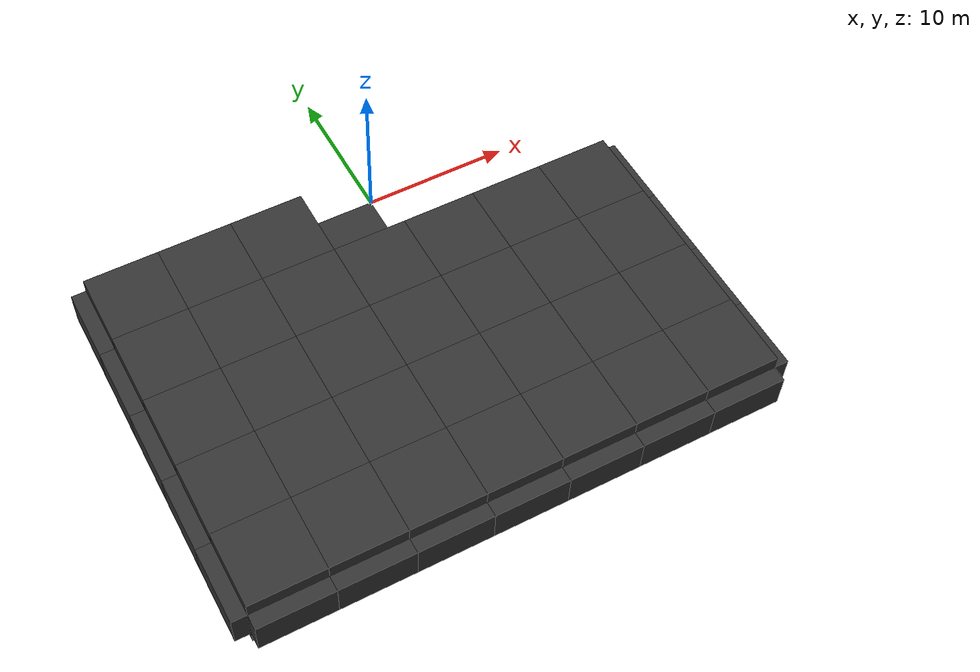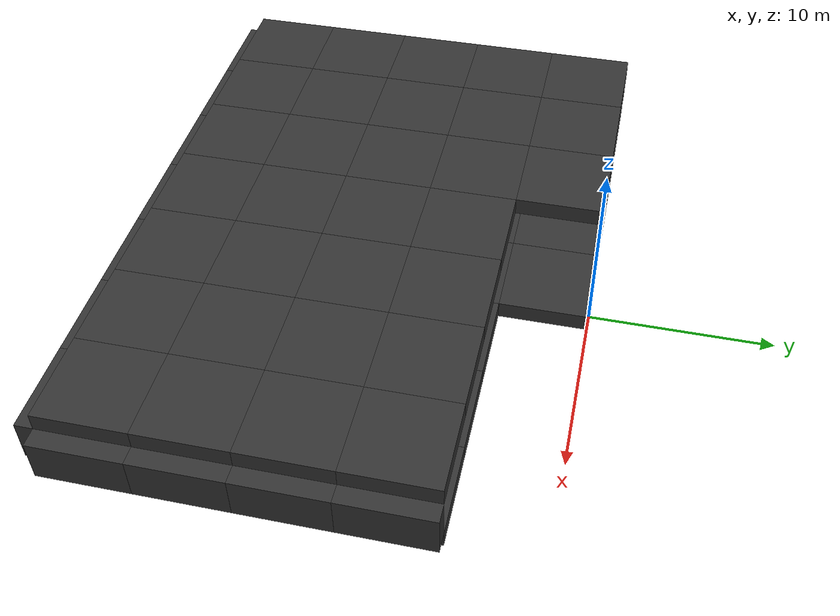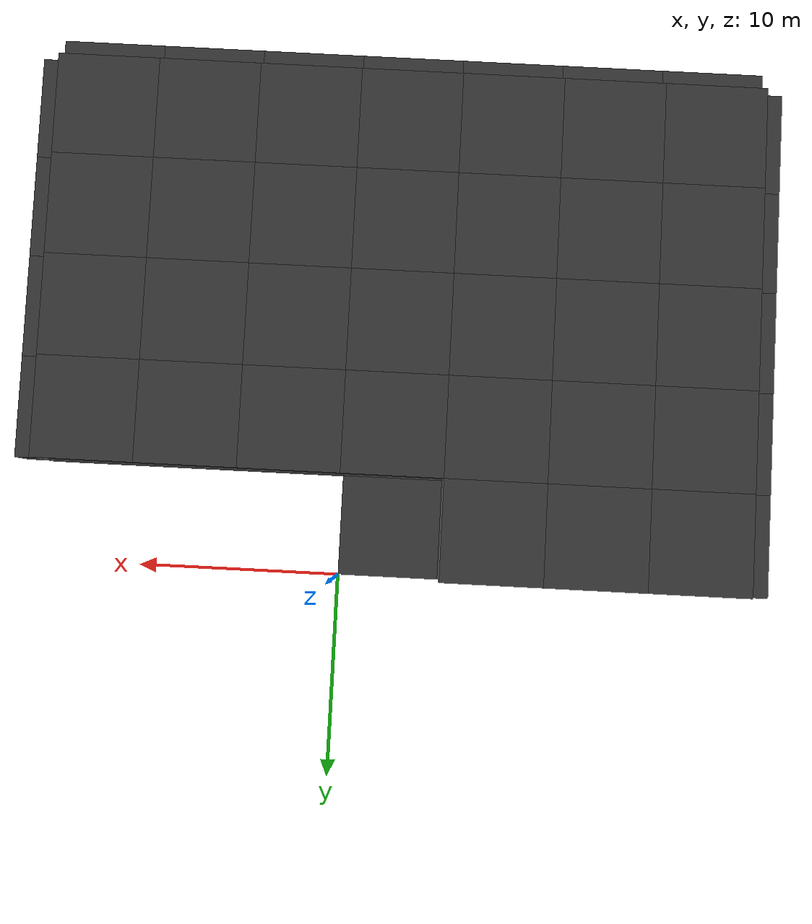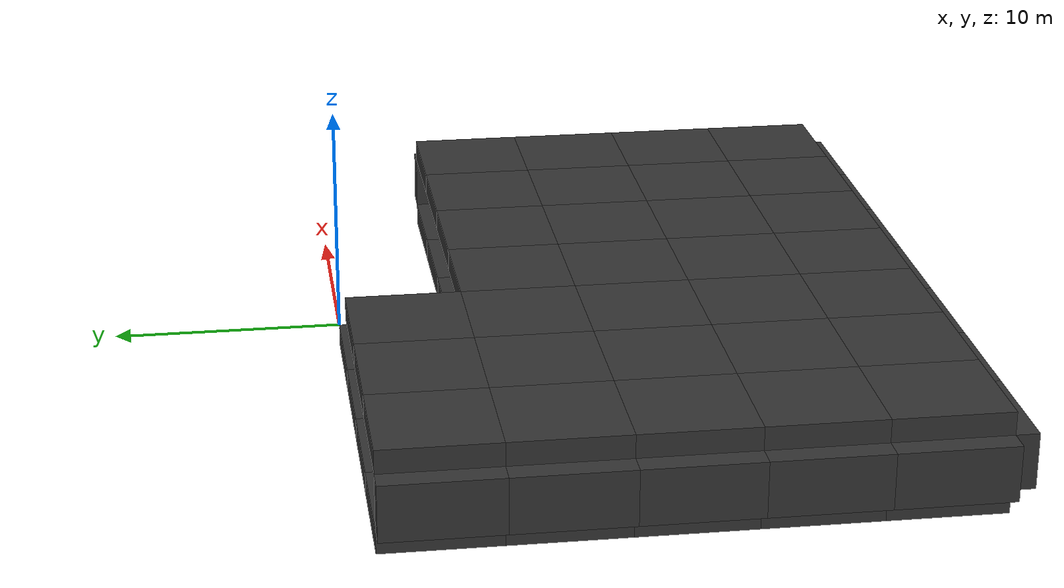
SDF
<sdf version="1.7">
 <world name="RG1">
  <model name="floor_1">
   <static>true</static>
   <pose>-17.5 -22.5 -0.5 0.0 0.0 0.0</pose>
   <link name="floor_1-base-link">
    <visual name="floor_1-visual">
     <geometry><box><size>5 5 1.0</size></box></geometry>
     <material><diffuse>0.2 0.2 0.2 1</diffuse><specular>0.1 0.1 0.1 1</specular></material>
    </visual>
    <collision name="floor_1-collision"><geometry><box><size>5 5 1.0</size></box></geometry></collision>
   </link>
  </model>
  <model name="ceiling_1">
   <static>true</static>
   <pose>-17.5 -22.5 2.9 0.0 0.0 0.0</pose>
   <link name="ceiling_1-base-link">
    <visual name="ceiling_1-visual">
     <geometry><box><size>5 5 1.0</size></box></geometry>
     <material><diffuse>0.2 0.2 0.2 1</diffuse><specular>0.1 0.1 0.1 1</specular></material>
    </visual>
    <collision name="ceiling_1-collision"><geometry><box><size>5 5 1.0</size></box></geometry></collision>
    <light type="point" name="ceiling_1-light">
     <pose>0 0 -1 0 0 0</pose>
     <cast_shadows>false</cast_shadows>
     <diffuse>0.8 0.8 0.8 1</diffuse>
     <attenuation>
      <range>10</range>
      <constant>0.8</constant>
      <linear>0.05</linear>
      <quadratic>0.01</quadratic>
     </attenuation>
    </light>
   </link>
  </model>
  <model name="wall_1">
   <static>true</static>
   <pose>-20.5 -22.5 1.2 0.0 0.0 1.570796326795</pose>
   <link name="wall_1-base-link">
    <visual name="wall_1-visual">
     <geometry><box><size>5 1 2.4</size></box></geometry>
     <material><diffuse>0.2 0.2 0.2 1</diffuse><specular>0.1 0.1 0.1 1</specular></material>
    </visual>
    <collision name="wall_1-collision"><geometry><box><size>5 1 2.4</size></box></geometry></collision>
   </link>
  </model>
  <model name="wall_2">
   <static>true</static>
   <pose>-17.5 -25.5 1.2 0.0 0.0 0.0</pose>
   <link name="wall_2-base-link">
    <visual name="wall_2-visual">
     <geometry><box><size>5 1 2.4</size></box></geometry>
     <material><diffuse>0.2 0.2 0.2 1</diffuse><specular>0.1 0.1 0.1 1</specular></material>
    </visual>
    <collision name="wall_2-collision"><geometry><box><size>5 1 2.4</size></box></geometry></collision>
   </link>
  </model>
  <model name="floor_2">
   <static>true</static>
   <pose>-17.5 -17.5 -0.5 0.0 0.0 0.0</pose>
   <link name="floor_2-base-link">
    <visual name="floor_2-visual">
     <geometry><box><size>5 5 1.0</size></box></geometry>
     <material><diffuse>0.2 0.2 0.2 1</diffuse><specular>0.1 0.1 0.1 1</specular></material>
    </visual>
    <collision name="floor_2-collision"><geometry><box><size>5 5 1.0</size></box></geometry></collision>
   </link>
  </model>
  <model name="ceiling_2">
   <static>true</static>
   <pose>-17.5 -17.5 2.9 0.0 0.0 0.0</pose>
   <link name="ceiling_2-base-link">
    <visual name="ceiling_2-visual">
     <geometry><box><size>5 5 1.0</size></box></geometry>
     <material><diffuse>0.2 0.2 0.2 1</diffuse><specular>0.1 0.1 0.1 1</specular></material>
    </visual>
    <collision name="ceiling_2-collision"><geometry><box><size>5 5 1.0</size></box></geometry></collision>
    <light type="point" name="ceiling_2-light">
     <pose>0 0 -1 0 0 0</pose>
     <cast_shadows>false</cast_shadows>
     <diffuse>0.8 0.8 0.8 1</diffuse>
     <attenuation>
      <range>10</range>
      <constant>0.8</constant>
      <linear>0.05</linear>
      <quadratic>0.01</quadratic>
     </attenuation>
    </light>
   </link>
  </model>
  <model name="wall_3">
   <static>true</static>
   <pose>-20.5 -17.5 1.2 0.0 0.0 1.570796326795</pose>
   <link name="wall_3-base-link">
    <visual name="wall_3-visual">
     <geometry><box><size>5 1 2.4</size></box></geometry>
     <material><diffuse>0.2 0.2 0.2 1</diffuse><specular>0.1 0.1 0.1 1</specular></material>
    </visual>
    <collision name="wall_3-collision"><geometry><box><size>5 1 2.4</size></box></geometry></collision>
   </link>
  </model>
  <model name="floor_3">
   <static>true</static>
   <pose>-17.5 -12.5 -0.5 0.0 0.0 0.0</pose>
   <link name="floor_3-base-link">
    <visual name="floor_3-visual">
     <geometry><box><size>5 5 1.0</size></box></geometry>
     <material><diffuse>0.2 0.2 0.2 1</diffuse><specular>0.1 0.1 0.1 1</specular></material>
    </visual>
    <collision name="floor_3-collision"><geometry><box><size>5 5 1.0</size></box></geometry></collision>
   </link>
  </model>
  <model name="ceiling_3">
   <static>true</static>
   <pose>-17.5 -12.5 2.9 0.0 0.0 0.0</pose>
   <link name="ceiling_3-base-link">
    <visual name="ceiling_3-visual">
     <geometry><box><size>5 5 1.0</size></box></geometry>
     <material><diffuse>0.2 0.2 0.2 1</diffuse><specular>0.1 0.1 0.1 1</specular></material>
    </visual>
    <collision name="ceiling_3-collision"><geometry><box><size>5 5 1.0</size></box></geometry></collision>
    <light type="point" name="ceiling_3-light">
     <pose>0 0 -1 0 0 0</pose>
     <cast_shadows>false</cast_shadows>
     <diffuse>0.8 0.8 0.8 1</diffuse>
     <attenuation>
      <range>10</range>
      <constant>0.8</constant>
      <linear>0.05</linear>
      <quadratic>0.01</quadratic>
     </attenuation>
    </light>
   </link>
  </model>
  <model name="wall_4">
   <static>true</static>
   <pose>-20.5 -12.5 1.2 0.0 0.0 1.570796326795</pose>
   <link name="wall_4-base-link">
    <visual name="wall_4-visual">
     <geometry><box><size>5 1 2.4</size></box></geometry>
     <material><diffuse>0.2 0.2 0.2 1</diffuse><specular>0.1 0.1 0.1 1</specular></material>
    </visual>
    <collision name="wall_4-collision"><geometry><box><size>5 1 2.4</size></box></geometry></collision>
   </link>
  </model>
  <model name="floor_4">
   <static>true</static>
   <pose>-17.5 -7.5 -0.5 0.0 0.0 0.0</pose>
   <link name="floor_4-base-link">
    <visual name="floor_4-visual">
     <geometry><box><size>5 5 1.0</size></box></geometry>
     <material><diffuse>0.2 0.2 0.2 1</diffuse><specular>0.1 0.1 0.1 1</specular></material>
    </visual>
    <collision name="floor_4-collision"><geometry><box><size>5 5 1.0</size></box></geometry></collision>
   </link>
  </model>
  <model name="ceiling_4">
   <static>true</static>
   <pose>-17.5 -7.5 2.9 0.0 0.0 0.0</pose>
   <link name="ceiling_4-base-link">
    <visual name="ceiling_4-visual">
     <geometry><box><size>5 5 1.0</size></box></geometry>
     <material><diffuse>0.2 0.2 0.2 1</diffuse><specular>0.1 0.1 0.1 1</specular></material>
    </visual>
    <collision name="ceiling_4-collision"><geometry><box><size>5 5 1.0</size></box></geometry></collision>
    <light type="point" name="ceiling_4-light">
     <pose>0 0 -1 0 0 0</pose>
     <cast_shadows>false</cast_shadows>
     <diffuse>0.8 0.8 0.8 1</diffuse>
     <attenuation>
      <range>10</range>
      <constant>0.8</constant>
      <linear>0.05</linear>
      <quadratic>0.01</quadratic>
     </attenuation>
    </light>
   </link>
  </model>
  <model name="wall_5">
   <static>true</static>
   <pose>-20.5 -7.5 1.2 0.0 0.0 1.570796326795</pose>
   <link name="wall_5-base-link">
    <visual name="wall_5-visual">
     <geometry><box><size>5 1 2.4</size></box></geometry>
     <material><diffuse>0.2 0.2 0.2 1</diffuse><specular>0.1 0.1 0.1 1</specular></material>
    </visual>
    <collision name="wall_5-collision"><geometry><box><size>5 1 2.4</size></box></geometry></collision>
   </link>
  </model>
  <model name="floor_5">
   <static>true</static>
   <pose>-17.5 -2.5 -0.5 0.0 0.0 0.0</pose>
   <link name="floor_5-base-link">
    <visual name="floor_5-visual">
     <geometry><box><size>5 5 1.0</size></box></geometry>
     <material><diffuse>0.2 0.2 0.2 1</diffuse><specular>0.1 0.1 0.1 1</specular></material>
    </visual>
    <collision name="floor_5-collision"><geometry><box><size>5 5 1.0</size></box></geometry></collision>
   </link>
  </model>
  <model name="ceiling_5">
   <static>true</static>
   <pose>-17.5 -2.5 2.9 0.0 0.0 0.0</pose>
   <link name="ceiling_5-base-link">
    <visual name="ceiling_5-visual">
     <geometry><box><size>5 5 1.0</size></box></geometry>
     <material><diffuse>0.2 0.2 0.2 1</diffuse><specular>0.1 0.1 0.1 1</specular></material>
    </visual>
    <collision name="ceiling_5-collision"><geometry><box><size>5 5 1.0</size></box></geometry></collision>
    <light type="point" name="ceiling_5-light">
     <pose>0 0 -1 0 0 0</pose>
     <cast_shadows>false</cast_shadows>
     <diffuse>0.8 0.8 0.8 1</diffuse>
     <attenuation>
      <range>10</range>
      <constant>0.8</constant>
      <linear>0.05</linear>
      <quadratic>0.01</quadratic>
     </attenuation>
    </light>
   </link>
  </model>
  <model name="wall_6">
   <static>true</static>
   <pose>-20.5 -2.5 1.2 0.0 0.0 1.570796326795</pose>
   <link name="wall_6-base-link">
    <visual name="wall_6-visual">
     <geometry><box><size>5 1 2.4</size></box></geometry>
     <material><diffuse>0.2 0.2 0.2 1</diffuse><specular>0.1 0.1 0.1 1</specular></material>
    </visual>
    <collision name="wall_6-collision"><geometry><box><size>5 1 2.4</size></box></geometry></collision>
   </link>
  </model>
  <model name="floor_10">
   <static>true</static>
   <pose>-12.5 -22.5 -0.5 0.0 0.0 0.0</pose>
   <link name="floor_10-base-link">
    <visual name="floor_10-visual">
     <geometry><box><size>5 5 1.0</size></box></geometry>
     <material><diffuse>0.2 0.2 0.2 1</diffuse><specular>0.1 0.1 0.1 1</specular></material>
    </visual>
    <collision name="floor_10-collision"><geometry><box><size>5 5 1.0</size></box></geometry></collision>
   </link>
  </model>
  <model name="ceiling_10">
   <static>true</static>
   <pose>-12.5 -22.5 2.9 0.0 0.0 0.0</pose>
   <link name="ceiling_10-base-link">
    <visual name="ceiling_10-visual">
     <geometry><box><size>5 5 1.0</size></box></geometry>
     <material><diffuse>0.2 0.2 0.2 1</diffuse><specular>0.1 0.1 0.1 1</specular></material>
    </visual>
    <collision name="ceiling_10-collision"><geometry><box><size>5 5 1.0</size></box></geometry></collision>
    <light type="point" name="ceiling_10-light">
     <pose>0 0 -1 0 0 0</pose>
     <cast_shadows>false</cast_shadows>
     <diffuse>0.8 0.8 0.8 1</diffuse>
     <attenuation>
      <range>10</range>
      <constant>0.8</constant>
      <linear>0.05</linear>
      <quadratic>0.01</quadratic>
     </attenuation>
    </light>
   </link>
  </model>
  <model name="wall_12">
   <static>true</static>
   <pose>-12.5 -25.5 1.2 0.0 0.0 0.0</pose>
   <link name="wall_12-base-link">
    <visual name="wall_12-visual">
     <geometry><box><size>5 1 2.4</size></box></geometry>
     <material><diffuse>0.2 0.2 0.2 1</diffuse><specular>0.1 0.1 0.1 1</specular></material>
    </visual>
    <collision name="wall_12-collision"><geometry><box><size>5 1 2.4</size></box></geometry></collision>
   </link>
  </model>
  <model name="floor_11">
   <static>true</static>
   <pose>-12.5 -17.5 -0.5 0.0 0.0 0.0</pose>
   <link name="floor_11-base-link">
    <visual name="floor_11-visual">
     <geometry><box><size>5 5 1.0</size></box></geometry>
     <material><diffuse>0.2 0.2 0.2 1</diffuse><specular>0.1 0.1 0.1 1</specular></material>
    </visual>
    <collision name="floor_11-collision"><geometry><box><size>5 5 1.0</size></box></geometry></collision>
   </link>
  </model>
  <model name="ceiling_11">
   <static>true</static>
   <pose>-12.5 -17.5 2.9 0.0 0.0 0.0</pose>
   <link name="ceiling_11-base-link">
    <visual name="ceiling_11-visual">
     <geometry><box><size>5 5 1.0</size></box></geometry>
     <material><diffuse>0.2 0.2 0.2 1</diffuse><specular>0.1 0.1 0.1 1</specular></material>
    </visual>
    <collision name="ceiling_11-collision"><geometry><box><size>5 5 1.0</size></box></geometry></collision>
    <light type="point" name="ceiling_11-light">
     <pose>0 0 -1 0 0 0</pose>
     <cast_shadows>false</cast_shadows>
     <diffuse>0.8 0.8 0.8 1</diffuse>
     <attenuation>
      <range>10</range>
      <constant>0.8</constant>
      <linear>0.05</linear>
      <quadratic>0.01</quadratic>
     </attenuation>
    </light>
   </link>
  </model>
  <model name="floor_12">
   <static>true</static>
   <pose>-12.5 -12.5 -0.5 0.0 0.0 0.0</pose>
   <link name="floor_12-base-link">
    <visual name="floor_12-visual">
     <geometry><box><size>5 5 1.0</size></box></geometry>
     <material><diffuse>0.2 0.2 0.2 1</diffuse><specular>0.1 0.1 0.1 1</specular></material>
    </visual>
    <collision name="floor_12-collision"><geometry><box><size>5 5 1.0</size></box></geometry></collision>
   </link>
  </model>
  <model name="ceiling_12">
   <static>true</static>
   <pose>-12.5 -12.5 2.9 0.0 0.0 0.0</pose>
   <link name="ceiling_12-base-link">
    <visual name="ceiling_12-visual">
     <geometry><box><size>5 5 1.0</size></box></geometry>
     <material><diffuse>0.2 0.2 0.2 1</diffuse><specular>0.1 0.1 0.1 1</specular></material>
    </visual>
    <collision name="ceiling_12-collision"><geometry><box><size>5 5 1.0</size></box></geometry></collision>
    <light type="point" name="ceiling_12-light">
     <pose>0 0 -1 0 0 0</pose>
     <cast_shadows>false</cast_shadows>
     <diffuse>0.8 0.8 0.8 1</diffuse>
     <attenuation>
      <range>10</range>
      <constant>0.8</constant>
      <linear>0.05</linear>
      <quadratic>0.01</quadratic>
     </attenuation>
    </light>
   </link>
  </model>
  <model name="floor_13">
   <static>true</static>
   <pose>-12.5 -7.5 -0.5 0.0 0.0 0.0</pose>
   <link name="floor_13-base-link">
    <visual name="floor_13-visual">
     <geometry><box><size>5 5 1.0</size></box></geometry>
     <material><diffuse>0.2 0.2 0.2 1</diffuse><specular>0.1 0.1 0.1 1</specular></material>
    </visual>
    <collision name="floor_13-collision"><geometry><box><size>5 5 1.0</size></box></geometry></collision>
   </link>
  </model>
  <model name="ceiling_13">
   <static>true</static>
   <pose>-12.5 -7.5 2.9 0.0 0.0 0.0</pose>
   <link name="ceiling_13-base-link">
    <visual name="ceiling_13-visual">
     <geometry><box><size>5 5 1.0</size></box></geometry>
     <material><diffuse>0.2 0.2 0.2 1</diffuse><specular>0.1 0.1 0.1 1</specular></material>
    </visual>
    <collision name="ceiling_13-collision"><geometry><box><size>5 5 1.0</size></box></geometry></collision>
    <light type="point" name="ceiling_13-light">
     <pose>0 0 -1 0 0 0</pose>
     <cast_shadows>false</cast_shadows>
     <diffuse>0.8 0.8 0.8 1</diffuse>
     <attenuation>
      <range>10</range>
      <constant>0.8</constant>
      <linear>0.05</linear>
      <quadratic>0.01</quadratic>
     </attenuation>
    </light>
   </link>
  </model>
  <model name="floor_14">
   <static>true</static>
   <pose>-12.5 -2.5 -0.5 0.0 0.0 0.0</pose>
   <link name="floor_14-base-link">
    <visual name="floor_14-visual">
     <geometry><box><size>5 5 1.0</size></box></geometry>
     <material><diffuse>0.2 0.2 0.2 1</diffuse><specular>0.1 0.1 0.1 1</specular></material>
    </visual>
    <collision name="floor_14-collision"><geometry><box><size>5 5 1.0</size></box></geometry></collision>
   </link>
  </model>
  <model name="ceiling_14">
   <static>true</static>
   <pose>-12.5 -2.5 2.9 0.0 0.0 0.0</pose>
   <link name="ceiling_14-base-link">
    <visual name="ceiling_14-visual">
     <geometry><box><size>5 5 1.0</size></box></geometry>
     <material><diffuse>0.2 0.2 0.2 1</diffuse><specular>0.1 0.1 0.1 1</specular></material>
    </visual>
    <collision name="ceiling_14-collision"><geometry><box><size>5 5 1.0</size></box></geometry></collision>
    <light type="point" name="ceiling_14-light">
     <pose>0 0 -1 0 0 0</pose>
     <cast_shadows>false</cast_shadows>
     <diffuse>0.8 0.8 0.8 1</diffuse>
     <attenuation>
      <range>10</range>
      <constant>0.8</constant>
      <linear>0.05</linear>
      <quadratic>0.01</quadratic>
     </attenuation>
    </light>
   </link>
  </model>
  <model name="floor_19">
   <static>true</static>
   <pose>-7.5 -22.5 -0.5 0.0 0.0 0.0</pose>
   <link name="floor_19-base-link">
    <visual name="floor_19-visual">
     <geometry><box><size>5 5 1.0</size></box></geometry>
     <material><diffuse>0.2 0.2 0.2 1</diffuse><specular>0.1 0.1 0.1 1</specular></material>
    </visual>
    <collision name="floor_19-collision"><geometry><box><size>5 5 1.0</size></box></geometry></collision>
   </link>
  </model>
  <model name="ceiling_19">
   <static>true</static>
   <pose>-7.5 -22.5 2.9 0.0 0.0 0.0</pose>
   <link name="ceiling_19-base-link">
    <visual name="ceiling_19-visual">
     <geometry><box><size>5 5 1.0</size></box></geometry>
     <material><diffuse>0.2 0.2 0.2 1</diffuse><specular>0.1 0.1 0.1 1</specular></material>
    </visual>
    <collision name="ceiling_19-collision"><geometry><box><size>5 5 1.0</size></box></geometry></collision>
    <light type="point" name="ceiling_19-light">
     <pose>0 0 -1 0 0 0</pose>
     <cast_shadows>false</cast_shadows>
     <diffuse>0.8 0.8 0.8 1</diffuse>
     <attenuation>
      <range>10</range>
      <constant>0.8</constant>
      <linear>0.05</linear>
      <quadratic>0.01</quadratic>
     </attenuation>
    </light>
   </link>
  </model>
  <model name="wall_14">
   <static>true</static>
   <pose>-7.5 -25.5 1.2 0.0 0.0 0.0</pose>
   <link name="wall_14-base-link">
    <visual name="wall_14-visual">
     <geometry><box><size>5 1 2.4</size></box></geometry>
     <material><diffuse>0.2 0.2 0.2 1</diffuse><specular>0.1 0.1 0.1 1</specular></material>
    </visual>
    <collision name="wall_14-collision"><geometry><box><size>5 1 2.4</size></box></geometry></collision>
   </link>
  </model>
  <model name="floor_20">
   <static>true</static>
   <pose>-7.5 -17.5 -0.5 0.0 0.0 0.0</pose>
   <link name="floor_20-base-link">
    <visual name="floor_20-visual">
     <geometry><box><size>5 5 1.0</size></box></geometry>
     <material><diffuse>0.2 0.2 0.2 1</diffuse><specular>0.1 0.1 0.1 1</specular></material>
    </visual>
    <collision name="floor_20-collision"><geometry><box><size>5 5 1.0</size></box></geometry></collision>
   </link>
  </model>
  <model name="ceiling_20">
   <static>true</static>
   <pose>-7.5 -17.5 2.9 0.0 0.0 0.0</pose>
   <link name="ceiling_20-base-link">
    <visual name="ceiling_20-visual">
     <geometry><box><size>5 5 1.0</size></box></geometry>
     <material><diffuse>0.2 0.2 0.2 1</diffuse><specular>0.1 0.1 0.1 1</specular></material>
    </visual>
    <collision name="ceiling_20-collision"><geometry><box><size>5 5 1.0</size></box></geometry></collision>
    <light type="point" name="ceiling_20-light">
     <pose>0 0 -1 0 0 0</pose>
     <cast_shadows>false</cast_shadows>
     <diffuse>0.8 0.8 0.8 1</diffuse>
     <attenuation>
      <range>10</range>
      <constant>0.8</constant>
      <linear>0.05</linear>
      <quadratic>0.01</quadratic>
     </attenuation>
    </light>
   </link>
  </model>
  <model name="floor_21">
   <static>true</static>
   <pose>-7.5 -12.5 -0.5 0.0 0.0 0.0</pose>
   <link name="floor_21-base-link">
    <visual name="floor_21-visual">
     <geometry><box><size>5 5 1.0</size></box></geometry>
     <material><diffuse>0.2 0.2 0.2 1</diffuse><specular>0.1 0.1 0.1 1</specular></material>
    </visual>
    <collision name="floor_21-collision"><geometry><box><size>5 5 1.0</size></box></geometry></collision>
   </link>
  </model>
  <model name="ceiling_21">
   <static>true</static>
   <pose>-7.5 -12.5 2.9 0.0 0.0 0.0</pose>
   <link name="ceiling_21-base-link">
    <visual name="ceiling_21-visual">
     <geometry><box><size>5 5 1.0</size></box></geometry>
     <material><diffuse>0.2 0.2 0.2 1</diffuse><specular>0.1 0.1 0.1 1</specular></material>
    </visual>
    <collision name="ceiling_21-collision"><geometry><box><size>5 5 1.0</size></box></geometry></collision>
    <light type="point" name="ceiling_21-light">
     <pose>0 0 -1 0 0 0</pose>
     <cast_shadows>false</cast_shadows>
     <diffuse>0.8 0.8 0.8 1</diffuse>
     <attenuation>
      <range>10</range>
      <constant>0.8</constant>
      <linear>0.05</linear>
      <quadratic>0.01</quadratic>
     </attenuation>
    </light>
   </link>
  </model>
  <model name="floor_22">
   <static>true</static>
   <pose>-7.5 -7.5 -0.5 0.0 0.0 0.0</pose>
   <link name="floor_22-base-link">
    <visual name="floor_22-visual">
     <geometry><box><size>5 5 1.0</size></box></geometry>
     <material><diffuse>0.2 0.2 0.2 1</diffuse><specular>0.1 0.1 0.1 1</specular></material>
    </visual>
    <collision name="floor_22-collision"><geometry><box><size>5 5 1.0</size></box></geometry></collision>
   </link>
  </model>
  <model name="ceiling_22">
   <static>true</static>
   <pose>-7.5 -7.5 2.9 0.0 0.0 0.0</pose>
   <link name="ceiling_22-base-link">
    <visual name="ceiling_22-visual">
     <geometry><box><size>5 5 1.0</size></box></geometry>
     <material><diffuse>0.2 0.2 0.2 1</diffuse><specular>0.1 0.1 0.1 1</specular></material>
    </visual>
    <collision name="ceiling_22-collision"><geometry><box><size>5 5 1.0</size></box></geometry></collision>
    <light type="point" name="ceiling_22-light">
     <pose>0 0 -1 0 0 0</pose>
     <cast_shadows>false</cast_shadows>
     <diffuse>0.8 0.8 0.8 1</diffuse>
     <attenuation>
      <range>10</range>
      <constant>0.8</constant>
      <linear>0.05</linear>
      <quadratic>0.01</quadratic>
     </attenuation>
    </light>
   </link>
  </model>
  <model name="floor_23">
   <static>true</static>
   <pose>-7.5 -2.5 -0.5 0.0 0.0 0.0</pose>
   <link name="floor_23-base-link">
    <visual name="floor_23-visual">
     <geometry><box><size>5 5 1.0</size></box></geometry>
     <material><diffuse>0.2 0.2 0.2 1</diffuse><specular>0.1 0.1 0.1 1</specular></material>
    </visual>
    <collision name="floor_23-collision"><geometry><box><size>5 5 1.0</size></box></geometry></collision>
   </link>
  </model>
  <model name="ceiling_23">
   <static>true</static>
   <pose>-7.5 -2.5 2.9 0.0 0.0 0.0</pose>
   <link name="ceiling_23-base-link">
    <visual name="ceiling_23-visual">
     <geometry><box><size>5 5 1.0</size></box></geometry>
     <material><diffuse>0.2 0.2 0.2 1</diffuse><specular>0.1 0.1 0.1 1</specular></material>
    </visual>
    <collision name="ceiling_23-collision"><geometry><box><size>5 5 1.0</size></box></geometry></collision>
    <light type="point" name="ceiling_23-light">
     <pose>0 0 -1 0 0 0</pose>
     <cast_shadows>false</cast_shadows>
     <diffuse>0.8 0.8 0.8 1</diffuse>
     <attenuation>
      <range>10</range>
      <constant>0.8</constant>
      <linear>0.05</linear>
      <quadratic>0.01</quadratic>
     </attenuation>
    </light>
   </link>
  </model>
  <model name="floor_28">
   <static>true</static>
   <pose>-2.5 -22.5 -0.5 0.0 0.0 0.0</pose>
   <link name="floor_28-base-link">
    <visual name="floor_28-visual">
     <geometry><box><size>5 5 1.0</size></box></geometry>
     <material><diffuse>0.2 0.2 0.2 1</diffuse><specular>0.1 0.1 0.1 1</specular></material>
    </visual>
    <collision name="floor_28-collision"><geometry><box><size>5 5 1.0</size></box></geometry></collision>
   </link>
  </model>
  <model name="ceiling_28">
   <static>true</static>
   <pose>-2.5 -22.5 2.9 0.0 0.0 0.0</pose>
   <link name="ceiling_28-base-link">
    <visual name="ceiling_28-visual">
     <geometry><box><size>5 5 1.0</size></box></geometry>
     <material><diffuse>0.2 0.2 0.2 1</diffuse><specular>0.1 0.1 0.1 1</specular></material>
    </visual>
    <collision name="ceiling_28-collision"><geometry><box><size>5 5 1.0</size></box></geometry></collision>
    <light type="point" name="ceiling_28-light">
     <pose>0 0 -1 0 0 0</pose>
     <cast_shadows>false</cast_shadows>
     <diffuse>0.8 0.8 0.8 1</diffuse>
     <attenuation>
      <range>10</range>
      <constant>0.8</constant>
      <linear>0.05</linear>
      <quadratic>0.01</quadratic>
     </attenuation>
    </light>
   </link>
  </model>
  <model name="wall_16">
   <static>true</static>
   <pose>-2.5 -25.5 1.2 0.0 0.0 0.0</pose>
   <link name="wall_16-base-link">
    <visual name="wall_16-visual">
     <geometry><box><size>5 1 2.4</size></box></geometry>
     <material><diffuse>0.2 0.2 0.2 1</diffuse><specular>0.1 0.1 0.1 1</specular></material>
    </visual>
    <collision name="wall_16-collision"><geometry><box><size>5 1 2.4</size></box></geometry></collision>
   </link>
  </model>
  <model name="floor_29">
   <static>true</static>
   <pose>-2.5 -17.5 -0.5 0.0 0.0 0.0</pose>
   <link name="floor_29-base-link">
    <visual name="floor_29-visual">
     <geometry><box><size>5 5 1.0</size></box></geometry>
     <material><diffuse>0.2 0.2 0.2 1</diffuse><specular>0.1 0.1 0.1 1</specular></material>
    </visual>
    <collision name="floor_29-collision"><geometry><box><size>5 5 1.0</size></box></geometry></collision>
   </link>
  </model>
  <model name="ceiling_29">
   <static>true</static>
   <pose>-2.5 -17.5 2.9 0.0 0.0 0.0</pose>
   <link name="ceiling_29-base-link">
    <visual name="ceiling_29-visual">
     <geometry><box><size>5 5 1.0</size></box></geometry>
     <material><diffuse>0.2 0.2 0.2 1</diffuse><specular>0.1 0.1 0.1 1</specular></material>
    </visual>
    <collision name="ceiling_29-collision"><geometry><box><size>5 5 1.0</size></box></geometry></collision>
    <light type="point" name="ceiling_29-light">
     <pose>0 0 -1 0 0 0</pose>
     <cast_shadows>false</cast_shadows>
     <diffuse>0.8 0.8 0.8 1</diffuse>
     <attenuation>
      <range>10</range>
      <constant>0.8</constant>
      <linear>0.05</linear>
      <quadratic>0.01</quadratic>
     </attenuation>
    </light>
   </link>
  </model>
  <model name="floor_30">
   <static>true</static>
   <pose>-2.5 -12.5 -0.5 0.0 0.0 0.0</pose>
   <link name="floor_30-base-link">
    <visual name="floor_30-visual">
     <geometry><box><size>5 5 1.0</size></box></geometry>
     <material><diffuse>0.2 0.2 0.2 1</diffuse><specular>0.1 0.1 0.1 1</specular></material>
    </visual>
    <collision name="floor_30-collision"><geometry><box><size>5 5 1.0</size></box></geometry></collision>
   </link>
  </model>
  <model name="ceiling_30">
   <static>true</static>
   <pose>-2.5 -12.5 2.9 0.0 0.0 0.0</pose>
   <link name="ceiling_30-base-link">
    <visual name="ceiling_30-visual">
     <geometry><box><size>5 5 1.0</size></box></geometry>
     <material><diffuse>0.2 0.2 0.2 1</diffuse><specular>0.1 0.1 0.1 1</specular></material>
    </visual>
    <collision name="ceiling_30-collision"><geometry><box><size>5 5 1.0</size></box></geometry></collision>
    <light type="point" name="ceiling_30-light">
     <pose>0 0 -1 0 0 0</pose>
     <cast_shadows>false</cast_shadows>
     <diffuse>0.8 0.8 0.8 1</diffuse>
     <attenuation>
      <range>10</range>
      <constant>0.8</constant>
      <linear>0.05</linear>
      <quadratic>0.01</quadratic>
     </attenuation>
    </light>
   </link>
  </model>
  <model name="floor_31">
   <static>true</static>
   <pose>-2.5 -7.5 -0.5 0.0 0.0 0.0</pose>
   <link name="floor_31-base-link">
    <visual name="floor_31-visual">
     <geometry><box><size>5 5 1.0</size></box></geometry>
     <material><diffuse>0.2 0.2 0.2 1</diffuse><specular>0.1 0.1 0.1 1</specular></material>
    </visual>
    <collision name="floor_31-collision"><geometry><box><size>5 5 1.0</size></box></geometry></collision>
   </link>
  </model>
  <model name="ceiling_31">
   <static>true</static>
   <pose>-2.5 -7.5 2.9 0.0 0.0 0.0</pose>
   <link name="ceiling_31-base-link">
    <visual name="ceiling_31-visual">
     <geometry><box><size>5 5 1.0</size></box></geometry>
     <material><diffuse>0.2 0.2 0.2 1</diffuse><specular>0.1 0.1 0.1 1</specular></material>
    </visual>
    <collision name="ceiling_31-collision"><geometry><box><size>5 5 1.0</size></box></geometry></collision>
    <light type="point" name="ceiling_31-light">
     <pose>0 0 -1 0 0 0</pose>
     <cast_shadows>false</cast_shadows>
     <diffuse>0.8 0.8 0.8 1</diffuse>
     <attenuation>
      <range>10</range>
      <constant>0.8</constant>
      <linear>0.05</linear>
      <quadratic>0.01</quadratic>
     </attenuation>
    </light>
   </link>
  </model>
  <model name="floor_32">
   <static>true</static>
   <pose>-2.5 -2.5 -0.5 0.0 0.0 0.0</pose>
   <link name="floor_32-base-link">
    <visual name="floor_32-visual">
     <geometry><box><size>5 5 1.0</size></box></geometry>
     <material><diffuse>0.2 0.2 0.2 1</diffuse><specular>0.1 0.1 0.1 1</specular></material>
    </visual>
    <collision name="floor_32-collision"><geometry><box><size>5 5 1.0</size></box></geometry></collision>
   </link>
  </model>
  <model name="floor_37">
   <static>true</static>
   <pose>2.5 -22.5 -0.5 0.0 0.0 0.0</pose>
   <link name="floor_37-base-link">
    <visual name="floor_37-visual">
     <geometry><box><size>5 5 1.0</size></box></geometry>
     <material><diffuse>0.2 0.2 0.2 1</diffuse><specular>0.1 0.1 0.1 1</specular></material>
    </visual>
    <collision name="floor_37-collision"><geometry><box><size>5 5 1.0</size></box></geometry></collision>
   </link>
  </model>
  <model name="ceiling_37">
   <static>true</static>
   <pose>2.5 -22.5 2.9 0.0 0.0 0.0</pose>
   <link name="ceiling_37-base-link">
    <visual name="ceiling_37-visual">
     <geometry><box><size>5 5 1.0</size></box></geometry>
     <material><diffuse>0.2 0.2 0.2 1</diffuse><specular>0.1 0.1 0.1 1</specular></material>
    </visual>
    <collision name="ceiling_37-collision"><geometry><box><size>5 5 1.0</size></box></geometry></collision>
    <light type="point" name="ceiling_37-light">
     <pose>0 0 -1 0 0 0</pose>
     <cast_shadows>false</cast_shadows>
     <diffuse>0.8 0.8 0.8 1</diffuse>
     <attenuation>
      <range>10</range>
      <constant>0.8</constant>
      <linear>0.05</linear>
      <quadratic>0.01</quadratic>
     </attenuation>
    </light>
   </link>
  </model>
  <model name="wall_18">
   <static>true</static>
   <pose>2.5 -25.5 1.2 0.0 0.0 0.0</pose>
   <link name="wall_18-base-link">
    <visual name="wall_18-visual">
     <geometry><box><size>5 1 2.4</size></box></geometry>
     <material><diffuse>0.2 0.2 0.2 1</diffuse><specular>0.1 0.1 0.1 1</specular></material>
    </visual>
    <collision name="wall_18-collision"><geometry><box><size>5 1 2.4</size></box></geometry></collision>
   </link>
  </model>
  <model name="floor_38">
   <static>true</static>
   <pose>2.5 -17.5 -0.5 0.0 0.0 0.0</pose>
   <link name="floor_38-base-link">
    <visual name="floor_38-visual">
     <geometry><box><size>5 5 1.0</size></box></geometry>
     <material><diffuse>0.2 0.2 0.2 1</diffuse><specular>0.1 0.1 0.1 1</specular></material>
    </visual>
    <collision name="floor_38-collision"><geometry><box><size>5 5 1.0</size></box></geometry></collision>
   </link>
  </model>
  <model name="ceiling_38">
   <static>true</static>
   <pose>2.5 -17.5 2.9 0.0 0.0 0.0</pose>
   <link name="ceiling_38-base-link">
    <visual name="ceiling_38-visual">
     <geometry><box><size>5 5 1.0</size></box></geometry>
     <material><diffuse>0.2 0.2 0.2 1</diffuse><specular>0.1 0.1 0.1 1</specular></material>
    </visual>
    <collision name="ceiling_38-collision"><geometry><box><size>5 5 1.0</size></box></geometry></collision>
    <light type="point" name="ceiling_38-light">
     <pose>0 0 -1 0 0 0</pose>
     <cast_shadows>false</cast_shadows>
     <diffuse>0.8 0.8 0.8 1</diffuse>
     <attenuation>
      <range>10</range>
      <constant>0.8</constant>
      <linear>0.05</linear>
      <quadratic>0.01</quadratic>
     </attenuation>
    </light>
   </link>
  </model>
  <model name="floor_39">
   <static>true</static>
   <pose>2.5 -12.5 -0.5 0.0 0.0 0.0</pose>
   <link name="floor_39-base-link">
    <visual name="floor_39-visual">
     <geometry><box><size>5 5 1.0</size></box></geometry>
     <material><diffuse>0.2 0.2 0.2 1</diffuse><specular>0.1 0.1 0.1 1</specular></material>
    </visual>
    <collision name="floor_39-collision"><geometry><box><size>5 5 1.0</size></box></geometry></collision>
   </link>
  </model>
  <model name="ceiling_39">
   <static>true</static>
   <pose>2.5 -12.5 2.9 0.0 0.0 0.0</pose>
   <link name="ceiling_39-base-link">
    <visual name="ceiling_39-visual">
     <geometry><box><size>5 5 1.0</size></box></geometry>
     <material><diffuse>0.2 0.2 0.2 1</diffuse><specular>0.1 0.1 0.1 1</specular></material>
    </visual>
    <collision name="ceiling_39-collision"><geometry><box><size>5 5 1.0</size></box></geometry></collision>
    <light type="point" name="ceiling_39-light">
     <pose>0 0 -1 0 0 0</pose>
     <cast_shadows>false</cast_shadows>
     <diffuse>0.8 0.8 0.8 1</diffuse>
     <attenuation>
      <range>10</range>
      <constant>0.8</constant>
      <linear>0.05</linear>
      <quadratic>0.01</quadratic>
     </attenuation>
    </light>
   </link>
  </model>
  <model name="floor_40">
   <static>true</static>
   <pose>2.5 -7.5 -0.5 0.0 0.0 0.0</pose>
   <link name="floor_40-base-link">
    <visual name="floor_40-visual">
     <geometry><box><size>5 5 1.0</size></box></geometry>
     <material><diffuse>0.2 0.2 0.2 1</diffuse><specular>0.1 0.1 0.1 1</specular></material>
    </visual>
    <collision name="floor_40-collision"><geometry><box><size>5 5 1.0</size></box></geometry></collision>
   </link>
  </model>
  <model name="ceiling_40">
   <static>true</static>
   <pose>2.5 -7.5 2.9 0.0 0.0 0.0</pose>
   <link name="ceiling_40-base-link">
    <visual name="ceiling_40-visual">
     <geometry><box><size>5 5 1.0</size></box></geometry>
     <material><diffuse>0.2 0.2 0.2 1</diffuse><specular>0.1 0.1 0.1 1</specular></material>
    </visual>
    <collision name="ceiling_40-collision"><geometry><box><size>5 5 1.0</size></box></geometry></collision>
    <light type="point" name="ceiling_40-light">
     <pose>0 0 -1 0 0 0</pose>
     <cast_shadows>false</cast_shadows>
     <diffuse>0.8 0.8 0.8 1</diffuse>
     <attenuation>
      <range>10</range>
      <constant>0.8</constant>
      <linear>0.05</linear>
      <quadratic>0.01</quadratic>
     </attenuation>
    </light>
   </link>
  </model>
  <model name="floor_46">
   <static>true</static>
   <pose>7.5 -22.5 -0.5 0.0 0.0 0.0</pose>
   <link name="floor_46-base-link">
    <visual name="floor_46-visual">
     <geometry><box><size>5 5 1.0</size></box></geometry>
     <material><diffuse>0.2 0.2 0.2 1</diffuse><specular>0.1 0.1 0.1 1</specular></material>
    </visual>
    <collision name="floor_46-collision"><geometry><box><size>5 5 1.0</size></box></geometry></collision>
   </link>
  </model>
  <model name="ceiling_46">
   <static>true</static>
   <pose>7.5 -22.5 2.9 0.0 0.0 0.0</pose>
   <link name="ceiling_46-base-link">
    <visual name="ceiling_46-visual">
     <geometry><box><size>5 5 1.0</size></box></geometry>
     <material><diffuse>0.2 0.2 0.2 1</diffuse><specular>0.1 0.1 0.1 1</specular></material>
    </visual>
    <collision name="ceiling_46-collision"><geometry><box><size>5 5 1.0</size></box></geometry></collision>
    <light type="point" name="ceiling_46-light">
     <pose>0 0 -1 0 0 0</pose>
     <cast_shadows>false</cast_shadows>
     <diffuse>0.8 0.8 0.8 1</diffuse>
     <attenuation>
      <range>10</range>
      <constant>0.8</constant>
      <linear>0.05</linear>
      <quadratic>0.01</quadratic>
     </attenuation>
    </light>
   </link>
  </model>
  <model name="wall_20">
   <static>true</static>
   <pose>7.5 -25.5 1.2 0.0 0.0 0.0</pose>
   <link name="wall_20-base-link">
    <visual name="wall_20-visual">
     <geometry><box><size>5 1 2.4</size></box></geometry>
     <material><diffuse>0.2 0.2 0.2 1</diffuse><specular>0.1 0.1 0.1 1</specular></material>
    </visual>
    <collision name="wall_20-collision"><geometry><box><size>5 1 2.4</size></box></geometry></collision>
   </link>
  </model>
  <model name="floor_47">
   <static>true</static>
   <pose>7.5 -17.5 -0.5 0.0 0.0 0.0</pose>
   <link name="floor_47-base-link">
    <visual name="floor_47-visual">
     <geometry><box><size>5 5 1.0</size></box></geometry>
     <material><diffuse>0.2 0.2 0.2 1</diffuse><specular>0.1 0.1 0.1 1</specular></material>
    </visual>
    <collision name="floor_47-collision"><geometry><box><size>5 5 1.0</size></box></geometry></collision>
   </link>
  </model>
  <model name="ceiling_47">
   <static>true</static>
   <pose>7.5 -17.5 2.9 0.0 0.0 0.0</pose>
   <link name="ceiling_47-base-link">
    <visual name="ceiling_47-visual">
     <geometry><box><size>5 5 1.0</size></box></geometry>
     <material><diffuse>0.2 0.2 0.2 1</diffuse><specular>0.1 0.1 0.1 1</specular></material>
    </visual>
    <collision name="ceiling_47-collision"><geometry><box><size>5 5 1.0</size></box></geometry></collision>
    <light type="point" name="ceiling_47-light">
     <pose>0 0 -1 0 0 0</pose>
     <cast_shadows>false</cast_shadows>
     <diffuse>0.8 0.8 0.8 1</diffuse>
     <attenuation>
      <range>10</range>
      <constant>0.8</constant>
      <linear>0.05</linear>
      <quadratic>0.01</quadratic>
     </attenuation>
    </light>
   </link>
  </model>
  <model name="floor_48">
   <static>true</static>
   <pose>7.5 -12.5 -0.5 0.0 0.0 0.0</pose>
   <link name="floor_48-base-link">
    <visual name="floor_48-visual">
     <geometry><box><size>5 5 1.0</size></box></geometry>
     <material><diffuse>0.2 0.2 0.2 1</diffuse><specular>0.1 0.1 0.1 1</specular></material>
    </visual>
    <collision name="floor_48-collision"><geometry><box><size>5 5 1.0</size></box></geometry></collision>
   </link>
  </model>
  <model name="ceiling_48">
   <static>true</static>
   <pose>7.5 -12.5 2.9 0.0 0.0 0.0</pose>
   <link name="ceiling_48-base-link">
    <visual name="ceiling_48-visual">
     <geometry><box><size>5 5 1.0</size></box></geometry>
     <material><diffuse>0.2 0.2 0.2 1</diffuse><specular>0.1 0.1 0.1 1</specular></material>
    </visual>
    <collision name="ceiling_48-collision"><geometry><box><size>5 5 1.0</size></box></geometry></collision>
    <light type="point" name="ceiling_48-light">
     <pose>0 0 -1 0 0 0</pose>
     <cast_shadows>false</cast_shadows>
     <diffuse>0.8 0.8 0.8 1</diffuse>
     <attenuation>
      <range>10</range>
      <constant>0.8</constant>
      <linear>0.05</linear>
      <quadratic>0.01</quadratic>
     </attenuation>
    </light>
   </link>
  </model>
  <model name="floor_49">
   <static>true</static>
   <pose>7.5 -7.5 -0.5 0.0 0.0 0.0</pose>
   <link name="floor_49-base-link">
    <visual name="floor_49-visual">
     <geometry><box><size>5 5 1.0</size></box></geometry>
     <material><diffuse>0.2 0.2 0.2 1</diffuse><specular>0.1 0.1 0.1 1</specular></material>
    </visual>
    <collision name="floor_49-collision"><geometry><box><size>5 5 1.0</size></box></geometry></collision>
   </link>
  </model>
  <model name="ceiling_49">
   <static>true</static>
   <pose>7.5 -7.5 2.9 0.0 0.0 0.0</pose>
   <link name="ceiling_49-base-link">
    <visual name="ceiling_49-visual">
     <geometry><box><size>5 5 1.0</size></box></geometry>
     <material><diffuse>0.2 0.2 0.2 1</diffuse><specular>0.1 0.1 0.1 1</specular></material>
    </visual>
    <collision name="ceiling_49-collision"><geometry><box><size>5 5 1.0</size></box></geometry></collision>
    <light type="point" name="ceiling_49-light">
     <pose>0 0 -1 0 0 0</pose>
     <cast_shadows>false</cast_shadows>
     <diffuse>0.8 0.8 0.8 1</diffuse>
     <attenuation>
      <range>10</range>
      <constant>0.8</constant>
      <linear>0.05</linear>
      <quadratic>0.01</quadratic>
     </attenuation>
    </light>
   </link>
  </model>
  <model name="floor_55">
   <static>true</static>
   <pose>12.5 -22.5 -0.5 0.0 0.0 0.0</pose>
   <link name="floor_55-base-link">
    <visual name="floor_55-visual">
     <geometry><box><size>5 5 1.0</size></box></geometry>
     <material><diffuse>0.2 0.2 0.2 1</diffuse><specular>0.1 0.1 0.1 1</specular></material>
    </visual>
    <collision name="floor_55-collision"><geometry><box><size>5 5 1.0</size></box></geometry></collision>
   </link>
  </model>
  <model name="ceiling_55">
   <static>true</static>
   <pose>12.5 -22.5 2.9 0.0 0.0 0.0</pose>
   <link name="ceiling_55-base-link">
    <visual name="ceiling_55-visual">
     <geometry><box><size>5 5 1.0</size></box></geometry>
     <material><diffuse>0.2 0.2 0.2 1</diffuse><specular>0.1 0.1 0.1 1</specular></material>
    </visual>
    <collision name="ceiling_55-collision"><geometry><box><size>5 5 1.0</size></box></geometry></collision>
    <light type="point" name="ceiling_55-light">
     <pose>0 0 -1 0 0 0</pose>
     <cast_shadows>false</cast_shadows>
     <diffuse>0.8 0.8 0.8 1</diffuse>
     <attenuation>
      <range>10</range>
      <constant>0.8</constant>
      <linear>0.05</linear>
      <quadratic>0.01</quadratic>
     </attenuation>
    </light>
   </link>
  </model>
  <model name="wall_22">
   <static>true</static>
   <pose>15.5 -22.5 1.2 0.0 0.0 1.570796326795</pose>
   <link name="wall_22-base-link">
    <visual name="wall_22-visual">
     <geometry><box><size>5 1 2.4</size></box></geometry>
     <material><diffuse>0.2 0.2 0.2 1</diffuse><specular>0.1 0.1 0.1 1</specular></material>
    </visual>
    <collision name="wall_22-collision"><geometry><box><size>5 1 2.4</size></box></geometry></collision>
   </link>
  </model>
  <model name="wall_23">
   <static>true</static>
   <pose>12.5 -25.5 1.2 0.0 0.0 0.0</pose>
   <link name="wall_23-base-link">
    <visual name="wall_23-visual">
     <geometry><box><size>5 1 2.4</size></box></geometry>
     <material><diffuse>0.2 0.2 0.2 1</diffuse><specular>0.1 0.1 0.1 1</specular></material>
    </visual>
    <collision name="wall_23-collision"><geometry><box><size>5 1 2.4</size></box></geometry></collision>
   </link>
  </model>
  <model name="floor_56">
   <static>true</static>
   <pose>12.5 -17.5 -0.5 0.0 0.0 0.0</pose>
   <link name="floor_56-base-link">
    <visual name="floor_56-visual">
     <geometry><box><size>5 5 1.0</size></box></geometry>
     <material><diffuse>0.2 0.2 0.2 1</diffuse><specular>0.1 0.1 0.1 1</specular></material>
    </visual>
    <collision name="floor_56-collision"><geometry><box><size>5 5 1.0</size></box></geometry></collision>
   </link>
  </model>
  <model name="ceiling_56">
   <static>true</static>
   <pose>12.5 -17.5 2.9 0.0 0.0 0.0</pose>
   <link name="ceiling_56-base-link">
    <visual name="ceiling_56-visual">
     <geometry><box><size>5 5 1.0</size></box></geometry>
     <material><diffuse>0.2 0.2 0.2 1</diffuse><specular>0.1 0.1 0.1 1</specular></material>
    </visual>
    <collision name="ceiling_56-collision"><geometry><box><size>5 5 1.0</size></box></geometry></collision>
    <light type="point" name="ceiling_56-light">
     <pose>0 0 -1 0 0 0</pose>
     <cast_shadows>false</cast_shadows>
     <diffuse>0.8 0.8 0.8 1</diffuse>
     <attenuation>
      <range>10</range>
      <constant>0.8</constant>
      <linear>0.05</linear>
      <quadratic>0.01</quadratic>
     </attenuation>
    </light>
   </link>
  </model>
  <model name="wall_24">
   <static>true</static>
   <pose>15.5 -17.5 1.2 0.0 0.0 1.570796326795</pose>
   <link name="wall_24-base-link">
    <visual name="wall_24-visual">
     <geometry><box><size>5 1 2.4</size></box></geometry>
     <material><diffuse>0.2 0.2 0.2 1</diffuse><specular>0.1 0.1 0.1 1</specular></material>
    </visual>
    <collision name="wall_24-collision"><geometry><box><size>5 1 2.4</size></box></geometry></collision>
   </link>
  </model>
  <model name="floor_57">
   <static>true</static>
   <pose>12.5 -12.5 -0.5 0.0 0.0 0.0</pose>
   <link name="floor_57-base-link">
    <visual name="floor_57-visual">
     <geometry><box><size>5 5 1.0</size></box></geometry>
     <material><diffuse>0.2 0.2 0.2 1</diffuse><specular>0.1 0.1 0.1 1</specular></material>
    </visual>
    <collision name="floor_57-collision"><geometry><box><size>5 5 1.0</size></box></geometry></collision>
   </link>
  </model>
  <model name="ceiling_57">
   <static>true</static>
   <pose>12.5 -12.5 2.9 0.0 0.0 0.0</pose>
   <link name="ceiling_57-base-link">
    <visual name="ceiling_57-visual">
     <geometry><box><size>5 5 1.0</size></box></geometry>
     <material><diffuse>0.2 0.2 0.2 1</diffuse><specular>0.1 0.1 0.1 1</specular></material>
    </visual>
    <collision name="ceiling_57-collision"><geometry><box><size>5 5 1.0</size></box></geometry></collision>
    <light type="point" name="ceiling_57-light">
     <pose>0 0 -1 0 0 0</pose>
     <cast_shadows>false</cast_shadows>
     <diffuse>0.8 0.8 0.8 1</diffuse>
     <attenuation>
      <range>10</range>
      <constant>0.8</constant>
      <linear>0.05</linear>
      <quadratic>0.01</quadratic>
     </attenuation>
    </light>
   </link>
  </model>
  <model name="wall_25">
   <static>true</static>
   <pose>15.5 -12.5 1.2 0.0 0.0 1.570796326795</pose>
   <link name="wall_25-base-link">
    <visual name="wall_25-visual">
     <geometry><box><size>5 1 2.4</size></box></geometry>
     <material><diffuse>0.2 0.2 0.2 1</diffuse><specular>0.1 0.1 0.1 1</specular></material>
    </visual>
    <collision name="wall_25-collision"><geometry><box><size>5 1 2.4</size></box></geometry></collision>
   </link>
  </model>
  <model name="floor_58">
   <static>true</static>
   <pose>12.5 -7.5 -0.5 0.0 0.0 0.0</pose>
   <link name="floor_58-base-link">
    <visual name="floor_58-visual">
     <geometry><box><size>5 5 1.0</size></box></geometry>
     <material><diffuse>0.2 0.2 0.2 1</diffuse><specular>0.1 0.1 0.1 1</specular></material>
    </visual>
    <collision name="floor_58-collision"><geometry><box><size>5 5 1.0</size></box></geometry></collision>
   </link>
  </model>
  <model name="ceiling_58">
   <static>true</static>
   <pose>12.5 -7.5 2.9 0.0 0.0 0.0</pose>
   <link name="ceiling_58-base-link">
    <visual name="ceiling_58-visual">
     <geometry><box><size>5 5 1.0</size></box></geometry>
     <material><diffuse>0.2 0.2 0.2 1</diffuse><specular>0.1 0.1 0.1 1</specular></material>
    </visual>
    <collision name="ceiling_58-collision"><geometry><box><size>5 5 1.0</size></box></geometry></collision>
    <light type="point" name="ceiling_58-light">
     <pose>0 0 -1 0 0 0</pose>
     <cast_shadows>false</cast_shadows>
     <diffuse>0.8 0.8 0.8 1</diffuse>
     <attenuation>
      <range>10</range>
      <constant>0.8</constant>
      <linear>0.05</linear>
      <quadratic>0.01</quadratic>
     </attenuation>
    </light>
   </link>
  </model>
  <model name="wall_26">
   <static>true</static>
   <pose>15.5 -7.5 1.2 0.0 0.0 1.570796326795</pose>
   <link name="wall_26-base-link">
    <visual name="wall_26-visual">
     <geometry><box><size>5 1 2.4</size></box></geometry>
     <material><diffuse>0.2 0.2 0.2 1</diffuse><specular>0.1 0.1 0.1 1</specular></material>
    </visual>
    <collision name="wall_26-collision"><geometry><box><size>5 1 2.4</size></box></geometry></collision>
   </link>
  </model>
 </world>
</sdf>
